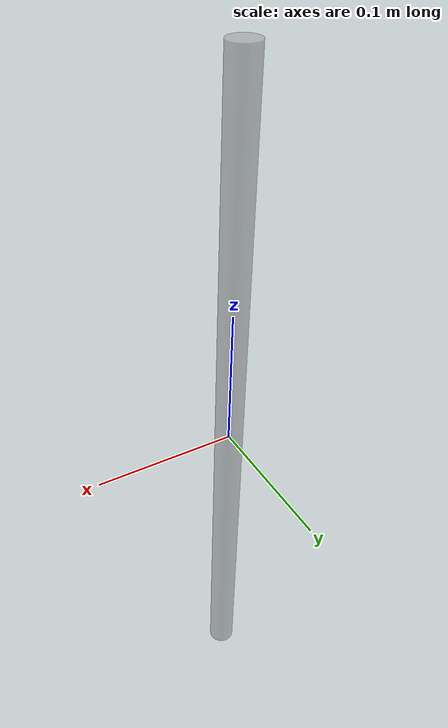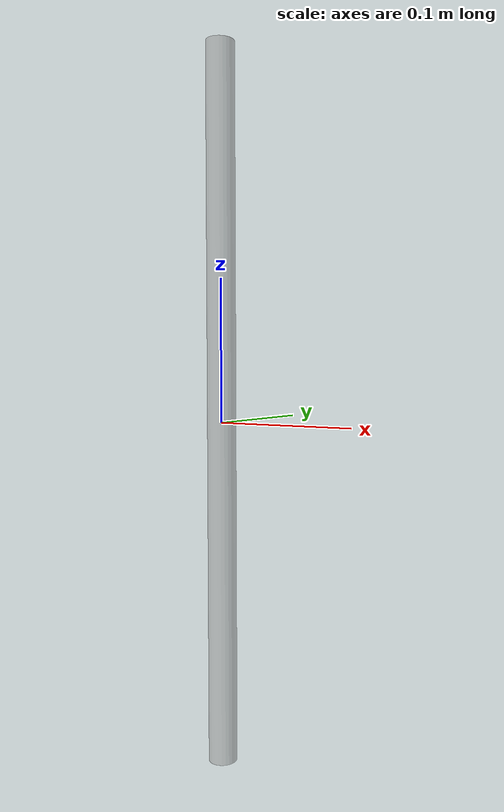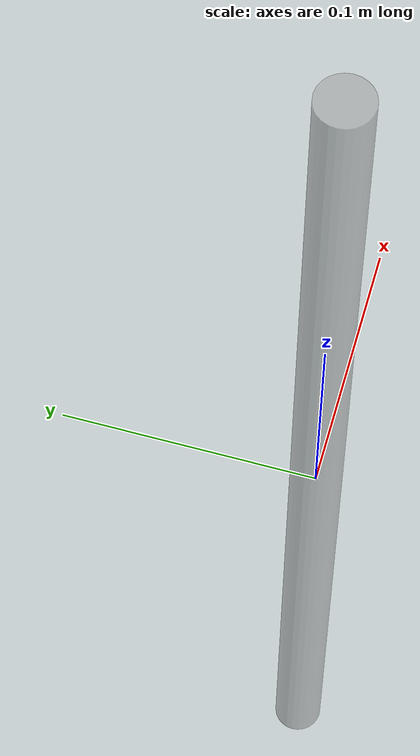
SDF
<?xml version='1.0'?>
<sdf version='1.4'>
  <model name="wire">
  <static>true</static>
    <link name="cylinder">
      <pose>0 0 0.01 0 0 0</pose>

      <collision name="collision">
        <geometry>
          <cylinder>
              <radius>.01</radius> <length>0.5</length>
          </cylinder>
        </geometry>
      </collision>

      <visual name="visual">
        <geometry>
          <cylinder>
              <radius>.01</radius> <length>0.5</length>
          </cylinder>
        </geometry>
        <material>
	  <script>
	    <name>Gazebo/GreyTransparent</name>
	  </script>
        </material>
      </visual>

    <inertial>
      <pose>0 0 0 0 0 0</pose>
      <mass>10</mass>
      <inertia>
        <ixx>0.4</ixx>
        <ixy>0.0</ixy>
        <ixz>0.0</ixz>
        <iyy>0.4</iyy>
        <iyz>0.0</iyz>
        <izz>0.2</izz>
      </inertia>
    </inertial>

    </link>

  </model>
</sdf>
